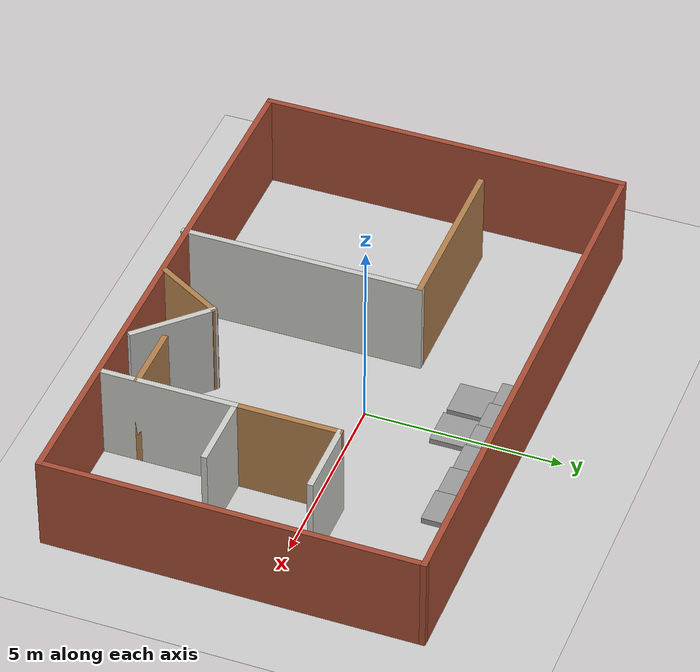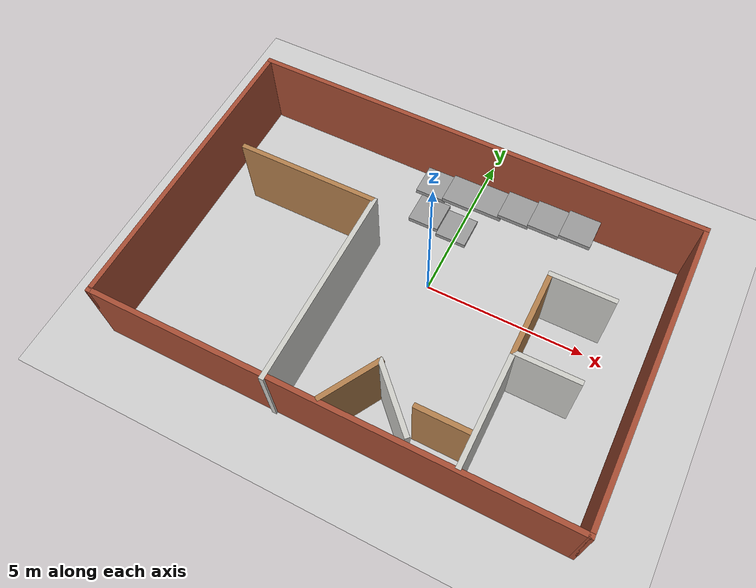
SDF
<sdf version="1.6">
 <world name="default">
  <light name="sun" type="directional">
   <pose>0 0 10 0 -0 0</pose>
   <diffuse>0.8 0.8 0.8 1</diffuse>
   <specular>0.2 0.2 0.2 1</specular>
   <attenuation>
    <range>1000</range>
    <constant>0.9</constant>
    <linear>0.01</linear>
    <quadratic>0.001</quadratic>
   </attenuation>
   <direction>-0.5 0.1 -0.9</direction>
  </light>
  <model name="ground_plane">
   <static>1</static>
   <link name="link">
    <collision name="collision">
     <geometry><plane><normal>0 0 1</normal><size>100 100</size></plane></geometry>
     <surface>
      <contact><collide_bitmask>65535</collide_bitmask></contact>
      <friction><ode><mu>100</mu><mu2>50</mu2></ode></friction>
     </surface>
    </collision>
    <visual name="visual">
     <cast_shadows>0</cast_shadows>
     <geometry><plane><normal>0 0 1</normal><size>100 100</size></plane></geometry>
     <material>
      <script><uri>file://media/materials/scripts/gazebo.material</uri><name>Gazebo/Grey</name></script>
     </material>
    </visual>
   </link>
  </model>
  <gravity>0 0 -9.8</gravity>
  <magnetic_field>6e-06 2.3e-05 -4.2e-05</magnetic_field>
  <atmosphere type="adiabatic"/>
  <physics name="default_physics" default="0" type="ode">
   <max_step_size>0.001</max_step_size>
   <real_time_factor>1</real_time_factor>
   <real_time_update_rate>1000</real_time_update_rate>
  </physics>
  <scene><ambient>0.4 0.4 0.4 1</ambient><background>0.7 0.7 0.7 1</background><shadows>1</shadows></scene>
  <audio><device>default</device></audio>
  <spherical_coordinates>
   <surface_model>EARTH_WGS84</surface_model>
   <latitude_deg>0</latitude_deg>
   <longitude_deg>0</longitude_deg>
   <elevation>0</elevation>
   <heading_deg>0</heading_deg>
  </spherical_coordinates>
  <model name="Box">
   <pose>-0.42549 -0.743233 0 0 -0 0</pose>
   <link name="Wall_1">
    <collision name="Wall_1_Collision">
     <geometry><box><size>9.5 0.15 2.5</size></box></geometry>
     <pose>0 0 1.25 0 -0 0</pose>
    </collision>
    <visual name="Wall_1_Visual">
     <pose>0 0 1.25 0 -0 0</pose>
     <geometry><box><size>9.5 0.15 2.5</size></box></geometry>
     <material>
      <script><uri>file://media/materials/scripts/gazebo.material</uri><name>Gazebo/Bricks</name></script>
      <ambient>1 1 1 1</ambient>
     </material>
     <meta><layer>0</layer></meta>
    </visual>
    <pose>-7.175 0 0 0 -0 -1.5708</pose>
   </link>
   <link name="Wall_2">
    <collision name="Wall_2_Collision">
     <geometry><box><size>14.5 0.15 2.5</size></box></geometry>
     <pose>0 0 1.25 0 -0 0</pose>
    </collision>
    <visual name="Wall_2_Visual">
     <pose>0 0 1.25 0 -0 0</pose>
     <geometry><box><size>14.5 0.15 2.5</size></box></geometry>
     <material>
      <script><uri>file://media/materials/scripts/gazebo.material</uri><name>Gazebo/Bricks</name></script>
      <ambient>1 1 1 1</ambient>
     </material>
     <meta><layer>0</layer></meta>
    </visual>
    <pose>-0 -4.675 0 0 -0 0</pose>
   </link>
   <link name="Wall_3">
    <collision name="Wall_3_Collision">
     <geometry><box><size>9.5 0.15 2.5</size></box></geometry>
     <pose>0 0 1.25 0 -0 0</pose>
    </collision>
    <visual name="Wall_3_Visual">
     <pose>0 0 1.25 0 -0 0</pose>
     <geometry><box><size>9.5 0.15 2.5</size></box></geometry>
     <material>
      <script><uri>file://media/materials/scripts/gazebo.material</uri><name>Gazebo/Bricks</name></script>
      <ambient>1 1 1 1</ambient>
     </material>
     <meta><layer>0</layer></meta>
    </visual>
    <pose>7.175 0 0 0 -0 1.5708</pose>
   </link>
   <link name="Wall_4">
    <collision name="Wall_4_Collision">
     <geometry><box><size>14.5 0.15 2.5</size></box></geometry>
     <pose>0 0 1.25 0 -0 0</pose>
    </collision>
    <visual name="Wall_4_Visual">
     <pose>0 0 1.25 0 -0 0</pose>
     <geometry><box><size>14.5 0.15 2.5</size></box></geometry>
     <material>
      <script><uri>file://media/materials/scripts/gazebo.material</uri><name>Gazebo/Bricks</name></script>
      <ambient>1 1 1 1</ambient>
     </material>
     <meta><layer>0</layer></meta>
    </visual>
    <pose>-0 4.675 0 0 -0 3.14159</pose>
   </link>
   <static>1</static>
  </model>
  <model name="Rooms">
   <pose>-0.62601 -2.42501 0 0 -0 0</pose>
   <link name="Wall_12">
    <collision name="Wall_12_Collision">
     <geometry><box><size>6.25 0.15 2.5</size></box></geometry>
     <pose>0 0 1.25 0 -0 0</pose>
    </collision>
    <visual name="Wall_12_Visual">
     <pose>0 0 1.25 0 -0 0</pose>
     <geometry><box><size>6.25 0.15 2.5</size></box></geometry>
     <material>
      <script><uri>file://media/materials/scripts/gazebo.material</uri><name>Gazebo/CeilingTiled</name></script>
      <ambient>1 1 1 1</ambient>
     </material>
     <meta><layer>0</layer></meta>
    </visual>
    <pose>-1.46785 -0.002717 0 0 -0 -1.5708</pose>
   </link>
   <link name="Wall_14">
    <collision name="Wall_14_Collision">
     <geometry><box><size>4.5 0.15 2.5</size></box></geometry>
     <pose>0 0 1.25 0 -0 0</pose>
    </collision>
    <visual name="Wall_14_Visual">
     <pose>0 0 1.25 0 -0 0</pose>
     <geometry><box><size>4.5 0.15 2.5</size></box></geometry>
     <material>
      <script><uri>file://media/materials/scripts/gazebo.material</uri><name>Gazebo/Wood</name></script>
      <ambient>1 1 1 1</ambient>
     </material>
     <meta><layer>0</layer></meta>
    </visual>
    <pose>-3.64285 3.04728 0 0 -0 3.14159</pose>
   </link>
   <link name="Wall_19">
    <collision name="Wall_19_Collision">
     <geometry><box><size>3.5 0.15 2.5</size></box></geometry>
     <pose>0 0 1.25 0 -0 0</pose>
    </collision>
    <visual name="Wall_19_Visual">
     <pose>0 0 1.25 0 -0 0</pose>
     <geometry><box><size>3.5 0.15 2.5</size></box></geometry>
     <material>
      <script><uri>file://media/materials/scripts/gazebo.material</uri><name>Gazebo/CeilingTiled</name></script>
      <ambient>1 1 1 1</ambient>
     </material>
     <meta><layer>0</layer></meta>
    </visual>
    <pose>3.96785 -1.22228 0 0 -0 1.5708</pose>
   </link>
   <link name="Wall_20">
    <collision name="Wall_20_Collision">
     <geometry><box><size>2 0.15 2.5</size></box></geometry>
     <pose>0 0 1.25 0 -0 0</pose>
    </collision>
    <visual name="Wall_20_Visual">
     <pose>0 0 1.25 0 -0 0</pose>
     <geometry><box><size>2 0.15 2.5</size></box></geometry>
     <material>
      <script><uri>file://media/materials/scripts/gazebo.material</uri><name>Gazebo/CeilingTiled</name></script>
      <ambient>1 1 1 1</ambient>
     </material>
     <meta><layer>0</layer></meta>
    </visual>
    <pose>4.89285 0.452717 0 0 -0 0</pose>
   </link>
   <link name="Wall_22">
    <collision name="Wall_22_Collision">
     <geometry><box><size>2.75 0.15 2.5</size></box></geometry>
     <pose>0 0 1.25 0 -0 0</pose>
    </collision>
    <visual name="Wall_22_Visual">
     <pose>0 0 1.25 0 -0 0</pose>
     <geometry><box><size>2.75 0.15 2.5</size></box></geometry>
     <material>
      <script><uri>file://media/materials/scripts/gazebo.material</uri><name>Gazebo/Wood</name></script>
      <ambient>1 1 1 1</ambient>
     </material>
     <meta><layer>0</layer></meta>
    </visual>
    <pose>3.96785 1.75272 0 0 -0 1.5708</pose>
   </link>
   <link name="Wall_23">
    <collision name="Wall_23_Collision">
     <geometry><box><size>2 0.15 2.5</size></box></geometry>
     <pose>0 0 1.25 0 -0 0</pose>
    </collision>
    <visual name="Wall_23_Visual">
     <pose>0 0 1.25 0 -0 0</pose>
     <geometry><box><size>2 0.15 2.5</size></box></geometry>
     <material>
      <script><uri>file://media/materials/scripts/gazebo.material</uri><name>Gazebo/CeilingTiled</name></script>
      <ambient>1 1 1 1</ambient>
     </material>
     <meta><layer>0</layer></meta>
    </visual>
    <pose>4.89285 3.05272 0 0 -0 0</pose>
   </link>
   <link name="Wall_26">
    <collision name="Wall_26_Collision">
     <geometry><box><size>2 0.15 2.5</size></box></geometry>
     <pose>0 0 1.25 0 -0 0</pose>
    </collision>
    <visual name="Wall_26_Visual">
     <pose>0 0 1.25 0 -0 0</pose>
     <geometry><box><size>2 0.15 2.5</size></box></geometry>
     <material>
      <script><uri>file://media/materials/scripts/gazebo.material</uri><name>Gazebo/Wood</name></script>
      <ambient>1 1 1 1</ambient>
     </material>
     <meta><layer>0</layer></meta>
    </visual>
    <pose>0.544404 -2.09621 0 0 -0 1.0472</pose>
   </link>
   <link name="Wall_27">
    <collision name="Wall_27_Collision">
     <geometry><box><size>2.25 0.15 2.5</size></box></geometry>
     <pose>0 0 1.25 0 -0 0</pose>
    </collision>
    <visual name="Wall_27_Visual">
     <pose>0 0 1.25 0 -0 0</pose>
     <geometry><box><size>2.25 0.15 2.5</size></box></geometry>
     <material>
      <script><uri>file://media/materials/scripts/gazebo.material</uri><name>Gazebo/CeilingTiled</name></script>
      <ambient>1 1 1 1</ambient>
     </material>
     <meta><layer>0</layer></meta>
    </visual>
    <pose>1.74937 -2.0376 0 0 -0 -0.785398</pose>
   </link>
   <link name="Wall_29">
    <collision name="Wall_29_Collision">
     <geometry><box><size>1.75 0.15 2.5</size></box></geometry>
     <pose>0 0 1.25 0 -0 0</pose>
    </collision>
    <visual name="Wall_29_Visual">
     <pose>0 0 1.25 0 -0 0</pose>
     <geometry><box><size>1.75 0.15 2.5</size></box></geometry>
     <material>
      <script><uri>file://media/materials/scripts/gazebo.material</uri><name>Gazebo/Wood</name></script>
      <ambient>1 1 1 1</ambient>
     </material>
     <meta><layer>0</layer></meta>
    </visual>
    <pose>3.16785 -1.99519 0 0 -0 3.14159</pose>
   </link>
   <static>1</static>
  </model>
  <model name="unit_box">
   <link name="link">
    <inertial>
     <mass>1</mass>
     <inertia>
      <ixx>0.166667</ixx>
      <ixy>0</ixy>
      <ixz>0</ixz>
      <iyy>0.166667</iyy>
      <iyz>0</iyz>
      <izz>0.166667</izz>
     </inertia>
    </inertial>
    <gravity>0</gravity>
    <visual name="visual">
     <geometry><box><size>1 1 0.152169</size></box></geometry>
     <material>
      <script><name>Gazebo/Grey</name><uri>file://media/materials/scripts/gazebo.material</uri></script>
      <shader type="vertex"><normal_map>__default__</normal_map></shader>
     </material>
    </visual>
    <collision name="collision">
     <geometry><box><size>1 1 0.152169</size></box></geometry>
     <surface>
      <friction>
       <ode><mu>1</mu><mu2>1</mu2><fdir1>0 0 0</fdir1><slip1>0</slip1><slip2>0</slip2></ode>
       <torsional>
        <coefficient>1</coefficient>
        <patch_radius>0</patch_radius>
        <surface_radius>0</surface_radius>
        <use_patch_radius>1</use_patch_radius>
        <ode><slip>0</slip></ode>
       </torsional>
      </friction>
      <bounce><restitution_coefficient>0</restitution_coefficient><threshold>1e+06</threshold></bounce>
      <contact>
       <collide_without_contact>0</collide_without_contact>
       <collide_without_contact_bitmask>1</collide_without_contact_bitmask>
       <collide_bitmask>1</collide_bitmask>
       <ode>
        <soft_cfm>0</soft_cfm>
        <soft_erp>0.2</soft_erp>
        <kp>1e+13</kp>
        <kd>1</kd>
        <max_vel>0.01</max_vel>
        <min_depth>0</min_depth>
       </ode>
       <bullet>
        <split_impulse>1</split_impulse>
        <split_impulse_penetration_threshold>-0.01</split_impulse_penetration_threshold>
        <soft_cfm>0</soft_cfm>
        <soft_erp>0.2</soft_erp>
        <kp>1e+13</kp>
        <kd>1</kd>
       </bullet>
      </contact>
     </surface>
    </collision>
   </link>
   <link name="link_clone">
    <inertial>
     <mass>1</mass>
     <inertia>
      <ixx>0.166667</ixx>
      <ixy>0</ixy>
      <ixz>0</ixz>
      <iyy>0.166667</iyy>
      <iyz>0</iyz>
      <izz>0.166667</izz>
     </inertia>
    </inertial>
    <pose>-0.996516 0.005009 -0.126718 0 -0 0</pose>
    <gravity>0</gravity>
    <visual name="visual">
     <geometry><box><size>1 1 0.152169</size></box></geometry>
     <material>
      <script><name>Gazebo/Grey</name><uri>file://media/materials/scripts/gazebo.material</uri></script>
      <shader type="vertex"><normal_map>__default__</normal_map></shader>
     </material>
    </visual>
    <collision name="collision">
     <geometry><box><size>1 1 0.152169</size></box></geometry>
     <surface>
      <friction>
       <ode><mu>1</mu><mu2>1</mu2><fdir1>0 0 0</fdir1><slip1>0</slip1><slip2>0</slip2></ode>
       <torsional>
        <coefficient>1</coefficient>
        <patch_radius>0</patch_radius>
        <surface_radius>0</surface_radius>
        <use_patch_radius>1</use_patch_radius>
        <ode><slip>0</slip></ode>
       </torsional>
      </friction>
      <bounce><restitution_coefficient>0</restitution_coefficient><threshold>1e+06</threshold></bounce>
      <contact>
       <collide_without_contact>0</collide_without_contact>
       <collide_without_contact_bitmask>1</collide_without_contact_bitmask>
       <collide_bitmask>1</collide_bitmask>
       <ode>
        <soft_cfm>0</soft_cfm>
        <soft_erp>0.2</soft_erp>
        <kp>1e+13</kp>
        <kd>1</kd>
        <max_vel>0.01</max_vel>
        <min_depth>0</min_depth>
       </ode>
       <bullet>
        <split_impulse>1</split_impulse>
        <split_impulse_penetration_threshold>-0.01</split_impulse_penetration_threshold>
        <soft_cfm>0</soft_cfm>
        <soft_erp>0.2</soft_erp>
        <kp>1e+13</kp>
        <kd>1</kd>
       </bullet>
      </contact>
     </surface>
    </collision>
   </link>
   <link name="link_clone_0">
    <inertial>
     <mass>1</mass>
     <inertia>
      <ixx>0.166667</ixx>
      <ixy>0</ixy>
      <ixz>0</ixz>
      <iyy>0.166667</iyy>
      <iyz>0</iyz>
      <izz>0.166667</izz>
     </inertia>
    </inertial>
    <pose>-1.97789 0.019994 -0.255044 0 -0 0</pose>
    <gravity>0</gravity>
    <visual name="visual">
     <geometry><box><size>1 1 0.152169</size></box></geometry>
     <material>
      <script><name>Gazebo/Grey</name><uri>file://media/materials/scripts/gazebo.material</uri></script>
      <shader type="vertex"><normal_map>__default__</normal_map></shader>
     </material>
    </visual>
    <collision name="collision">
     <geometry><box><size>1 1 0.152169</size></box></geometry>
     <surface>
      <friction>
       <ode><mu>1</mu><mu2>1</mu2><fdir1>0 0 0</fdir1><slip1>0</slip1><slip2>0</slip2></ode>
       <torsional>
        <coefficient>1</coefficient>
        <patch_radius>0</patch_radius>
        <surface_radius>0</surface_radius>
        <use_patch_radius>1</use_patch_radius>
        <ode><slip>0</slip></ode>
       </torsional>
      </friction>
      <bounce><restitution_coefficient>0</restitution_coefficient><threshold>1e+06</threshold></bounce>
      <contact>
       <collide_without_contact>0</collide_without_contact>
       <collide_without_contact_bitmask>1</collide_without_contact_bitmask>
       <collide_bitmask>1</collide_bitmask>
       <ode>
        <soft_cfm>0</soft_cfm>
        <soft_erp>0.2</soft_erp>
        <kp>1e+13</kp>
        <kd>1</kd>
        <max_vel>0.01</max_vel>
        <min_depth>0</min_depth>
       </ode>
       <bullet>
        <split_impulse>1</split_impulse>
        <split_impulse_penetration_threshold>-0.01</split_impulse_penetration_threshold>
        <soft_cfm>0</soft_cfm>
        <soft_erp>0.2</soft_erp>
        <kp>1e+13</kp>
        <kd>1</kd>
       </bullet>
      </contact>
     </surface>
    </collision>
   </link>
   <link name="link_clone_1">
    <inertial>
     <mass>1</mass>
     <inertia>
      <ixx>0.166667</ixx>
      <ixy>0</ixy>
      <ixz>0</ixz>
      <iyy>0.166667</iyy>
      <iyz>0</iyz>
      <izz>0.166667</izz>
     </inertia>
    </inertial>
    <pose>-2.87176 0.001856 -0.38699 0 -0 0</pose>
    <gravity>0</gravity>
    <visual name="visual">
     <geometry><box><size>1 1 0.152169</size></box></geometry>
     <material>
      <script><name>Gazebo/Grey</name><uri>file://media/materials/scripts/gazebo.material</uri></script>
      <shader type="vertex"><normal_map>__default__</normal_map></shader>
     </material>
    </visual>
    <collision name="collision">
     <geometry><box><size>1 1 0.152169</size></box></geometry>
     <surface>
      <friction>
       <ode><mu>1</mu><mu2>1</mu2><fdir1>0 0 0</fdir1><slip1>0</slip1><slip2>0</slip2></ode>
       <torsional>
        <coefficient>1</coefficient>
        <patch_radius>0</patch_radius>
        <surface_radius>0</surface_radius>
        <use_patch_radius>1</use_patch_radius>
        <ode><slip>0</slip></ode>
       </torsional>
      </friction>
      <bounce><restitution_coefficient>0</restitution_coefficient><threshold>1e+06</threshold></bounce>
      <contact>
       <collide_without_contact>0</collide_without_contact>
       <collide_without_contact_bitmask>1</collide_without_contact_bitmask>
       <collide_bitmask>1</collide_bitmask>
       <ode>
        <soft_cfm>0</soft_cfm>
        <soft_erp>0.2</soft_erp>
        <kp>1e+13</kp>
        <kd>1</kd>
        <max_vel>0.01</max_vel>
        <min_depth>0</min_depth>
       </ode>
       <bullet>
        <split_impulse>1</split_impulse>
        <split_impulse_penetration_threshold>-0.01</split_impulse_penetration_threshold>
        <soft_cfm>0</soft_cfm>
        <soft_erp>0.2</soft_erp>
        <kp>1e+13</kp>
        <kd>1</kd>
       </bullet>
      </contact>
     </surface>
    </collision>
   </link>
   <link name="link_clone_2">
    <inertial>
     <mass>1</mass>
     <inertia>
      <ixx>0.166667</ixx>
      <ixy>0</ixy>
      <ixz>0</ixz>
      <iyy>0.166667</iyy>
      <iyz>0</iyz>
      <izz>0.166667</izz>
     </inertia>
    </inertial>
    <pose>-3.8471 -0.011564 -0.520558 0 -0 0</pose>
    <gravity>0</gravity>
    <visual name="visual">
     <geometry><box><size>1 1 0.152169</size></box></geometry>
     <material>
      <script><name>Gazebo/Grey</name><uri>file://media/materials/scripts/gazebo.material</uri></script>
      <shader type="vertex"><normal_map>__default__</normal_map></shader>
     </material>
    </visual>
    <collision name="collision">
     <geometry><box><size>1 1 0.152169</size></box></geometry>
     <surface>
      <friction>
       <ode><mu>1</mu><mu2>1</mu2><fdir1>0 0 0</fdir1><slip1>0</slip1><slip2>0</slip2></ode>
       <torsional>
        <coefficient>1</coefficient>
        <patch_radius>0</patch_radius>
        <surface_radius>0</surface_radius>
        <use_patch_radius>1</use_patch_radius>
        <ode><slip>0</slip></ode>
       </torsional>
      </friction>
      <bounce><restitution_coefficient>0</restitution_coefficient><threshold>1e+06</threshold></bounce>
      <contact>
       <collide_without_contact>0</collide_without_contact>
       <collide_without_contact_bitmask>1</collide_without_contact_bitmask>
       <collide_bitmask>1</collide_bitmask>
       <ode>
        <soft_cfm>0</soft_cfm>
        <soft_erp>0.2</soft_erp>
        <kp>1e+13</kp>
        <kd>1</kd>
        <max_vel>0.01</max_vel>
        <min_depth>0</min_depth>
       </ode>
       <bullet>
        <split_impulse>1</split_impulse>
        <split_impulse_penetration_threshold>-0.01</split_impulse_penetration_threshold>
        <soft_cfm>0</soft_cfm>
        <soft_erp>0.2</soft_erp>
        <kp>1e+13</kp>
        <kd>1</kd>
       </bullet>
      </contact>
     </surface>
    </collision>
   </link>
   <link name="link_clone_3">
    <inertial>
     <mass>1</mass>
     <inertia>
      <ixx>0.166667</ixx>
      <ixy>0</ixy>
      <ixz>0</ixz>
      <iyy>0.166667</iyy>
      <iyz>0</iyz>
      <izz>0.166667</izz>
     </inertia>
    </inertial>
    <pose>-4.77693 0.008942 -0.663925 0 -0 0</pose>
    <gravity>0</gravity>
    <visual name="visual">
     <geometry><box><size>1 1 0.152169</size></box></geometry>
     <material>
      <script><name>Gazebo/Grey</name><uri>file://media/materials/scripts/gazebo.material</uri></script>
      <shader type="vertex"><normal_map>__default__</normal_map></shader>
     </material>
    </visual>
    <collision name="collision">
     <geometry><box><size>1 1 0.152169</size></box></geometry>
     <surface>
      <friction>
       <ode><mu>1</mu><mu2>1</mu2><fdir1>0 0 0</fdir1><slip1>0</slip1><slip2>0</slip2></ode>
       <torsional>
        <coefficient>1</coefficient>
        <patch_radius>0</patch_radius>
        <surface_radius>0</surface_radius>
        <use_patch_radius>1</use_patch_radius>
        <ode><slip>0</slip></ode>
       </torsional>
      </friction>
      <bounce><restitution_coefficient>0</restitution_coefficient><threshold>1e+06</threshold></bounce>
      <contact>
       <collide_without_contact>0</collide_without_contact>
       <collide_without_contact_bitmask>1</collide_without_contact_bitmask>
       <collide_bitmask>1</collide_bitmask>
       <ode>
        <soft_cfm>0</soft_cfm>
        <soft_erp>0.2</soft_erp>
        <kp>1e+13</kp>
        <kd>1</kd>
        <max_vel>0.01</max_vel>
        <min_depth>0</min_depth>
       </ode>
       <bullet>
        <split_impulse>1</split_impulse>
        <split_impulse_penetration_threshold>-0.01</split_impulse_penetration_threshold>
        <soft_cfm>0</soft_cfm>
        <soft_erp>0.2</soft_erp>
        <kp>1e+13</kp>
        <kd>1</kd>
       </bullet>
      </contact>
     </surface>
    </collision>
   </link>
   <link name="link_clone_4">
    <inertial>
     <mass>1</mass>
     <inertia>
      <ixx>0.166667</ixx>
      <ixy>0</ixy>
      <ixz>0</ixz>
      <iyy>0.166667</iyy>
      <iyz>0</iyz>
      <izz>0.166667</izz>
     </inertia>
    </inertial>
    <pose>-4.55555 -0.985751 -0.802595 0 -0 0</pose>
    <gravity>0</gravity>
    <visual name="visual">
     <geometry><box><size>1 1 0.152169</size></box></geometry>
     <material>
      <script><name>Gazebo/Grey</name><uri>file://media/materials/scripts/gazebo.material</uri></script>
      <shader type="vertex"><normal_map>__default__</normal_map></shader>
     </material>
    </visual>
    <collision name="collision">
     <geometry><box><size>1 1 0.152169</size></box></geometry>
     <surface>
      <friction>
       <ode><mu>1</mu><mu2>1</mu2><fdir1>0 0 0</fdir1><slip1>0</slip1><slip2>0</slip2></ode>
       <torsional>
        <coefficient>1</coefficient>
        <patch_radius>0</patch_radius>
        <surface_radius>0</surface_radius>
        <use_patch_radius>1</use_patch_radius>
        <ode><slip>0</slip></ode>
       </torsional>
      </friction>
      <bounce><restitution_coefficient>0</restitution_coefficient><threshold>1e+06</threshold></bounce>
      <contact>
       <collide_without_contact>0</collide_without_contact>
       <collide_without_contact_bitmask>1</collide_without_contact_bitmask>
       <collide_bitmask>1</collide_bitmask>
       <ode>
        <soft_cfm>0</soft_cfm>
        <soft_erp>0.2</soft_erp>
        <kp>1e+13</kp>
        <kd>1</kd>
        <max_vel>0.01</max_vel>
        <min_depth>0</min_depth>
       </ode>
       <bullet>
        <split_impulse>1</split_impulse>
        <split_impulse_penetration_threshold>-0.01</split_impulse_penetration_threshold>
        <soft_cfm>0</soft_cfm>
        <soft_erp>0.2</soft_erp>
        <kp>1e+13</kp>
        <kd>1</kd>
       </bullet>
      </contact>
     </surface>
    </collision>
   </link>
   <link name="link_clone_5">
    <inertial>
     <mass>1</mass>
     <inertia>
      <ixx>0.166667</ixx>
      <ixy>0</ixy>
      <ixz>0</ixz>
      <iyy>0.166667</iyy>
      <iyz>0</iyz>
      <izz>0.166667</izz>
     </inertia>
    </inertial>
    <pose>-3.5616 -1.06624 -0.924821 0 -0 0</pose>
    <gravity>0</gravity>
    <visual name="visual">
     <geometry><box><size>1 1 0.152169</size></box></geometry>
     <material>
      <script><name>Gazebo/Grey</name><uri>file://media/materials/scripts/gazebo.material</uri></script>
      <shader type="vertex"><normal_map>__default__</normal_map></shader>
     </material>
    </visual>
    <collision name="collision">
     <geometry><box><size>1 1 0.152169</size></box></geometry>
     <surface>
      <friction>
       <ode><mu>1</mu><mu2>1</mu2><fdir1>0 0 0</fdir1><slip1>0</slip1><slip2>0</slip2></ode>
       <torsional>
        <coefficient>1</coefficient>
        <patch_radius>0</patch_radius>
        <surface_radius>0</surface_radius>
        <use_patch_radius>1</use_patch_radius>
        <ode><slip>0</slip></ode>
       </torsional>
      </friction>
      <bounce><restitution_coefficient>0</restitution_coefficient><threshold>1e+06</threshold></bounce>
      <contact>
       <collide_without_contact>0</collide_without_contact>
       <collide_without_contact_bitmask>1</collide_without_contact_bitmask>
       <collide_bitmask>1</collide_bitmask>
       <ode>
        <soft_cfm>0</soft_cfm>
        <soft_erp>0.2</soft_erp>
        <kp>1e+13</kp>
        <kd>1</kd>
        <max_vel>0.01</max_vel>
        <min_depth>0</min_depth>
       </ode>
       <bullet>
        <split_impulse>1</split_impulse>
        <split_impulse_penetration_threshold>-0.01</split_impulse_penetration_threshold>
        <soft_cfm>0</soft_cfm>
        <soft_erp>0.2</soft_erp>
        <kp>1e+13</kp>
        <kd>1</kd>
       </bullet>
      </contact>
     </surface>
    </collision>
   </link>
   <static>1</static>
   <pose>3.45818 3.35448 0.97448 0 -0 0</pose>
  </model>
 </world>
</sdf>
